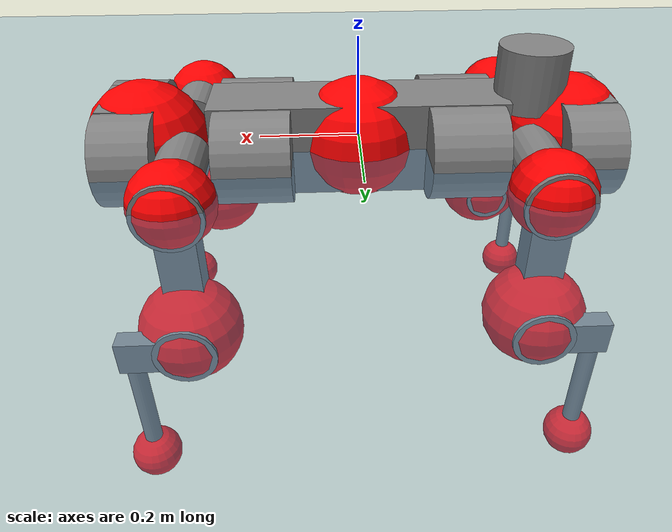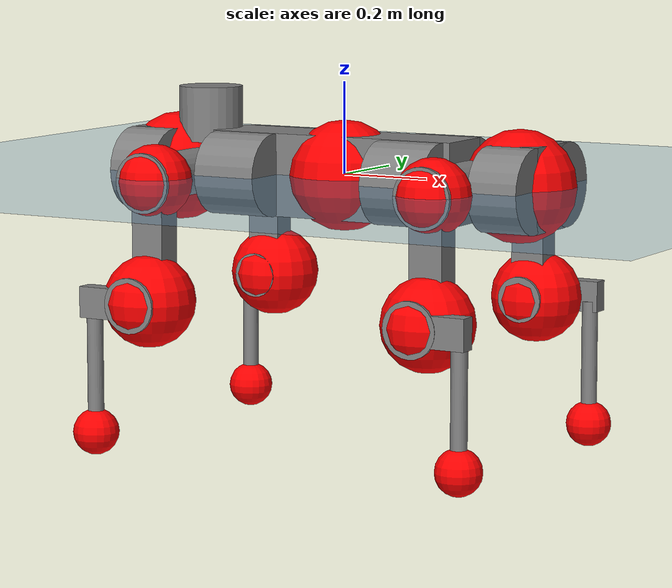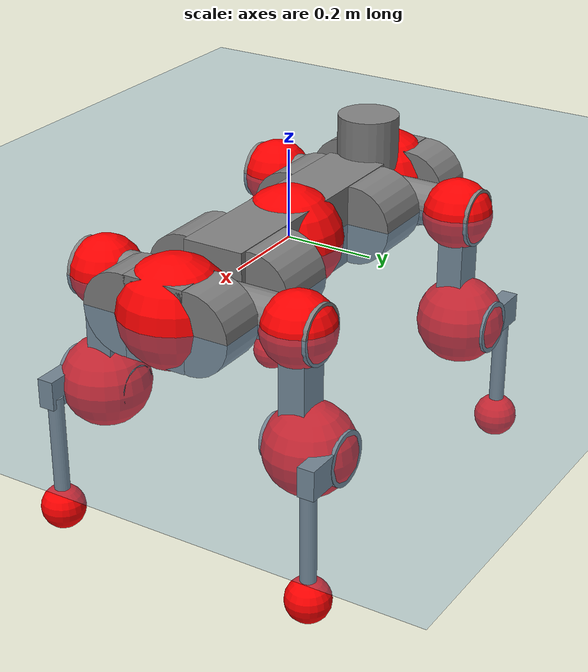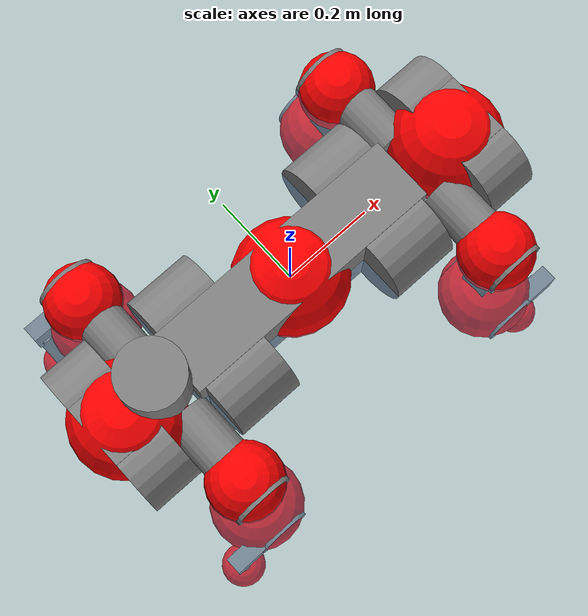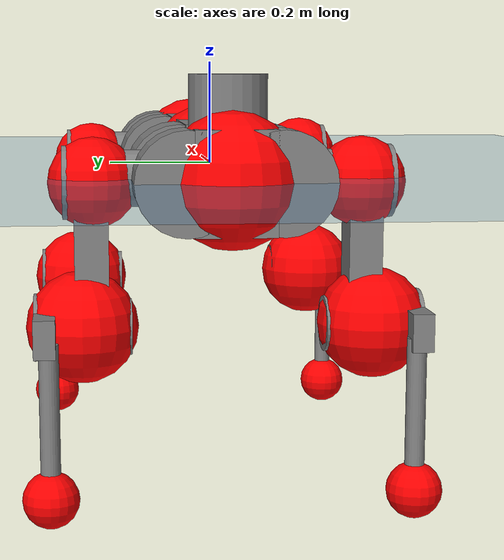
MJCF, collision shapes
<mujoco model="anymal_c">
  <compiler angle="radian" assetdir="assets" balanceinertia="true" inertiafromgeom="false"/>

  <option timestep="0.005" density="1.2" viscosity="2e-05"/>

  <size nkey="1"/>

  <visual>
    <quality shadowsize="8192"/>
    <map shadowclip="0.5"/>
  </visual>

  <default>
    <default class="/">
      <material specular="0" shininess="0.25"/>
      <geom contype="0" conaffinity="0" group="1" solref="-1000 -80"/>
      <site size="0.01 0.005 0.005" group="5"/>
      <general forcelimited="true" forcerange="-80 80" biastype="affine" gainprm="80" biasprm="0 -80 -2"/>
      <default class="anymal_c">
        <joint armature="0.01" damping="0.01" frictionloss="0.1"/>
        <default class="visual">
          <geom type="mesh" group="2"/>
          <default class="visual_zflip"/>
        </default>
        <default class="collision">
          <geom type="cylinder" group="3"/>
          <default class="foot">
            <geom size="0.03 0 0" type="sphere" condim="6" priority="1" friction="0.8 0.02 0.01" solimp="0.015 1 0.03"/>
          </default>
        </default>
      </default>
      <default class="reward_collision_sphere">
        <geom group="5" rgba="1 0 0 1"/>
      </default>
    </default>
  </default>

  <asset>
    <texture type="skybox" colorspace="auto" name="//unnamed_texture_0" builtin="gradient" rgb1="0.95 0.95 0.95" rgb2="0.95 0.95 0.95" width="100" height="600"/>
    <texture type="2d" colorspace="auto" name="texplane" builtin="checker" rgb1="0.345 0.575 0.748" rgb2="0.345 0.575 0.748" markrgb="1 1 1" width="512" height="512"/>
    <texture type="2d" colorspace="linear" name="base" file="base.png"/>
    <texture type="2d" colorspace="linear" name="top_shell" file="top_shell.png"/>
    <texture type="2d" colorspace="linear" name="bottom_shell" file="bottom_shell.png"/>
    <texture type="2d" colorspace="linear" name="remote" file="remote.png"/>
    <texture type="2d" colorspace="linear" name="hatch" file="hatch.png"/>
    <texture type="2d" colorspace="linear" name="handle" file="handle.png"/>
    <texture type="2d" colorspace="linear" name="face" file="face.png"/>
    <texture type="2d" colorspace="linear" name="battery" file="battery.png"/>
    <texture type="2d" colorspace="linear" name="lidar_cage" file="lidar_cage.png"/>
    <texture type="2d" colorspace="linear" name="depth_camera" file="depth_camera.png"/>
    <texture type="2d" colorspace="linear" name="wide_angle_camera" file="wide_angle_camera.png"/>
    <texture type="2d" colorspace="linear" name="lidar" file="lidar.png"/>
    <texture type="2d" colorspace="linear" name="drive" file="drive.png"/>
    <texture type="2d" colorspace="linear" name="hip_l" file="hip_l.png"/>
    <texture type="2d" colorspace="linear" name="shank_l" file="shank_l.png"/>
    <texture type="2d" colorspace="linear" name="foot" file="foot.png"/>
    <texture type="2d" colorspace="linear" name="thigh" file="thigh.png"/>
    <texture type="2d" colorspace="linear" name="shank_r" file="shank_r.png"/>
    <texture type="2d" colorspace="linear" name="hip_r" file="hip_r.png"/>
    <material name="MatPlane" class="/" texture="texplane" texuniform="true" texrepeat="2 2" specular="0.9" shininess="0.5"/>
    <material name="black_plastic" class="/" rgba="0.007 0.007 0.007 1"/>
    <material name="green" class="/" rgba="0.052 0.178 0.033 1"/>
    <material name="red" class="/" rgba="0.178 0.006 0.005 1"/>
    <material name="yellow" class="/" rgba="0.178 0.119 0.006 1"/>
    <material name="lwl" class="/" rgba="0.8 0.8 0.8 1"/>
    <material name="base" class="/" texture="base"/>
    <material name="top_shell" class="/" texture="top_shell"/>
    <material name="bottom_shell" class="/" texture="bottom_shell"/>
    <material name="hip_l" class="/" texture="hip_l"/>
    <material name="thigh" class="/" texture="thigh"/>
    <material name="shank_l" class="/" texture="shank_l"/>
    <material name="foot" class="/" texture="foot"/>
    <material name="hip_r" class="/" texture="hip_r"/>
    <material name="shank" class="/" texture="shank_r"/>
    <material name="hatch" class="/" texture="hatch"/>
    <material name="remote" class="/" texture="remote"/>
    <material name="handle" class="/" texture="handle"/>
    <material name="face" class="/" texture="face"/>
    <material name="depth_camera" class="/" texture="depth_camera"/>
    <material name="wide_angle_camera" class="/" texture="wide_angle_camera"/>
    <material name="battery" class="/" texture="battery"/>
    <material name="lidar_cage" class="/" texture="lidar_cage"/>
    <material name="lidar" class="/" texture="lidar"/>
    <material name="drive" class="/" texture="drive"/>
    <mesh name="base_0" class="/" file="base_0.obj"/>
    <mesh name="base_1" class="/" file="base_1.obj"/>
    <mesh name="base_2" class="/" file="base_2.obj"/>
    <mesh name="base_3" class="/" file="base_3.obj"/>
    <mesh name="base_4" class="/" file="base_4.obj"/>
    <mesh name="base_5" class="/" file="base_5.obj"/>
    <mesh name="top_shell" class="/" file="top_shell.obj"/>
    <mesh name="bottom_shell" class="/" file="bottom_shell.obj"/>
    <mesh name="remote" class="/" file="remote.obj"/>
    <mesh name="handle" class="/" file="handle.obj"/>
    <mesh name="face" class="/" file="face.obj"/>
    <mesh name="wide_angle_camera" class="/" file="wide_angle_camera.obj"/>
    <mesh name="depth_camera" class="/" file="depth_camera.obj"/>
    <mesh name="battery" class="/" file="battery.obj"/>
    <mesh name="lidar_cage" class="/" file="lidar_cage.obj"/>
    <mesh name="lidar" class="/" file="lidar.obj"/>
    <mesh name="drive" class="/" file="drive.obj"/>
    <mesh name="hip_l" class="/" file="hip_l.obj"/>
    <mesh name="thigh" class="/" file="thigh.obj"/>
    <mesh name="shank_l" class="/" file="shank_l.obj"/>
    <mesh name="foot" class="/" file="foot.obj"/>
    <mesh name="hip_r" class="/" file="hip_r.obj"/>
    <mesh name="hatch" class="/" file="hatch.obj"/>
    <mesh name="shank_r" class="/" file="shank_r.obj"/>
  </asset>

  <worldbody>
    <geom name="floor" class="/" size="100 100 0.125" type="plane" group="0" material="MatPlane"/>
    <light name="toplight_shadow" class="/" pos="0 0 5" dir="0.0990148 0.0990148 -0.990148" type="directional" ambient="0.04 0.04 0.04" diffuse="0.55 0.55 0.55" specular="0.12 0.12 0.12"/>
    <light name="toplight_fill" class="/" pos="0 0 5" dir="0.0990148 0.0990148 -0.990148" type="directional" castshadow="false" ambient="0.04 0.04 0.04" diffuse="0.3 0.3 0.3" specular="0.08 0.08 0.08"/>
    <body name="trunk" childclass="anymal_c" pos="0.000676938 -0.000323066 -0.00254825" quat="1 8.65445e-05 8.79182e-05 -6.43633e-05">
      <inertial pos="0.00096488 0.00381068 0.043586" quat="0.504472 0.498674 0.500425 0.496395" mass="20.2959" diaginertia="0.510181 1.41718 0.138147"/>
      <joint name="//unnamed_joint_0" type="free" armature="0" damping="0" frictionloss="0"/>
      <geom name="//unnamed_geom_1" class="visual" material="green" mesh="base_0"/>
      <geom name="//unnamed_geom_2" class="visual" material="yellow" mesh="base_1"/>
      <geom name="//unnamed_geom_3" class="visual" material="red" mesh="base_2"/>
      <geom name="//unnamed_geom_4" class="visual" material="black_plastic" mesh="base_3"/>
      <geom name="//unnamed_geom_5" class="visual" material="lwl" mesh="base_4"/>
      <geom name="//unnamed_geom_6" class="visual" material="base" mesh="base_5"/>
      <geom name="trunk_1" class="collision" size="0.291611 0.0703889 0.0905" type="box"/>
      <geom name="trunk_2" class="collision" size="0.0905 0.0729028" pos="0.204041 0.0819615 0" quat="0.707107 0 0.707107 0"/>
      <geom name="trunk_3" class="collision" size="0.0905 0.0729028" pos="-0.204041 0.0819615 0" quat="0.707107 0 0.707107 0"/>
      <geom name="trunk_4" class="collision" size="0.0905 0.0729028" pos="0.204041 -0.0819615 0" quat="0.707107 0 0.707107 0"/>
      <geom name="trunk_5" class="collision" size="0.0905 0.0729028" pos="-0.204041 -0.0819615 0" quat="0.707107 0 0.707107 0"/>
      <geom name="//unnamed_geom_12" class="visual" material="top_shell" mesh="top_shell"/>
      <geom name="//unnamed_geom_13" class="visual" material="bottom_shell" mesh="bottom_shell"/>
      <geom name="//unnamed_geom_14" class="visual" material="remote" mesh="remote"/>
      <geom name="//unnamed_geom_15" class="visual" material="handle" mesh="handle"/>
      <geom name="//unnamed_geom_16" class="visual" pos="0.388851 0 0" quat="1 0 0 0" material="face" mesh="face"/>
      <geom name="trunk_6" class="collision" size="0.0553056 0.0703889 0.0905" pos="0.440448 0 0" type="box"/>
      <geom name="//unnamed_geom_18" class="collision" size="0.0905 0.0553056" pos="0.440448 0.0819615 0" quat="0.707107 0 0.707107 0"/>
      <geom name="//unnamed_geom_19" class="collision" size="0.0905 0.0553056" pos="0.440448 -0.0819615 0" quat="0.707107 0 0.707107 0"/>
      <geom name="//unnamed_geom_20" class="visual" pos="0.433083 0 -0.0262724" quat="0.965926 0 0.258819 0" material="depth_camera" mesh="depth_camera"/>
      <geom name="//unnamed_geom_21" class="visual" pos="0.481256 0 0.0135878" material="wide_angle_camera" mesh="wide_angle_camera"/>
      <geom name="//unnamed_geom_22" class="visual_zflip" pos="-0.388851 0 0" quat="0 0 0 1" material="face" mesh="face"/>
      <geom name="trunk_7" class="collision" size="0.0553056 0.0703889 0.0905" pos="-0.440448 0 0" quat="0 0 0 1" type="box"/>
      <geom name="//unnamed_geom_24" class="collision" size="0.0905 0.0553056" pos="-0.440448 -0.0819615 0" quat="0 -0.707107 0 0.707107"/>
      <geom name="//unnamed_geom_25" class="collision" size="0.0905 0.0553056" pos="-0.440448 0.0819615 0" quat="0 -0.707107 0 0.707107"/>
      <geom name="//unnamed_geom_26" class="visual" pos="-0.433083 0 -0.0262724" quat="0 -0.258819 0 0.965926" material="depth_camera" mesh="depth_camera"/>
      <geom name="//unnamed_geom_27" class="visual_zflip" pos="-0.481256 0 0.0135878" quat="0 0 0 1" material="wide_angle_camera" mesh="wide_angle_camera"/>
      <geom name="//unnamed_geom_28" class="visual" material="battery" mesh="battery"/>
      <geom name="//unnamed_geom_29" class="visual" pos="0 0.0925784 0.0265992" quat="0.683013 -0.183013 0.183013 0.683013" material="depth_camera" mesh="depth_camera"/>
      <geom name="//unnamed_geom_30" class="visual" pos="0 -0.0925784 0.0265992" quat="0.683013 0.183013 0.183013 -0.683013" material="depth_camera" mesh="depth_camera"/>
      <geom name="//unnamed_geom_31" class="visual" pos="-0.341476 0 0.0667135" quat="1 0 0 0" material="lidar_cage" mesh="lidar_cage"/>
      <geom name="trunk_8" class="collision" size="0.0703889 0.0603333" pos="-0.341476 0 0.121173"/>
      <geom name="//unnamed_geom_33" class="visual" pos="-0.341476 9.14441e-05 0.12907" quat="0.707107 0 0 -0.707107" material="lidar" mesh="lidar"/>
      <geom name="//unnamed_geom_34" class="visual" pos="0.281343 0.121678 4.54044e-09" quat="0.258819 0.965926 0 0" material="drive" mesh="drive"/>
      <geom name="//unnamed_geom_35" class="visual" pos="0.281343 -0.121678 -4.54044e-09" quat="0.258819 -0.965926 0 0" material="drive" mesh="drive"/>
      <geom name="//unnamed_geom_36" class="visual" pos="-0.281343 0.121678 -4.54044e-09" quat="0 0 0.965926 -0.258819" material="drive" mesh="drive"/>
      <geom name="//unnamed_geom_37" class="visual" pos="-0.281343 -0.121678 4.54044e-09" quat="0 0 -0.965926 -0.258819" material="drive" mesh="drive"/>
      <geom name="//unnamed_geom_38" class="visual" pos="0.108822 0 0.0662597" quat="1 0 0 0" material="hatch" mesh="hatch"/>
      <geom name="//unnamed_geom_39" class="reward_collision_sphere" size="0.120667"/>
      <geom name="//unnamed_geom_40" class="reward_collision_sphere" size="0.120667" pos="0.422155 0 0"/>
      <geom name="//unnamed_geom_41" class="reward_collision_sphere" size="0.120667" pos="-0.422155 0 0"/>
      <site name="imu" pos="0.226398 0.0125093 0.0446343" size="0.0100556"/>
      <camera name="track" pos="0 -2.34176 0" quat="0.707107 0.707107 0 0" mode="trackcom"/>
      <camera name="ego_camera" pos="0.422155 0 -0.0363067" quat="-0.5 -0.5 0.5 0.5"/>
      <body name="LF_HIP" pos="0.283473 0.121237 -0.000432524" quat="0.258671 0.965965 -0.000116842 0.000317743">
        <inertial pos="0.0529823 -0.0164837 -0.00811004" quat="-0.111557 0.722608 -0.125251 0.670601" mass="2.90071" diaginertia="0.00434573 0.0108911 0.00208139"/>
        <joint name="LF_HAA" pos="0 0 0" axis="0.999896 0.013247 -0.00573864" range="-0.749019 0.439602" armature="0.0100317" damping="0.010979" frictionloss="0.104825"/>
        <geom name="//unnamed_geom_42" class="visual" pos="0 0.000267094 -4.38699e-05" quat="0.258819 -0.965926 0 0" material="hip_l" mesh="hip_l"/>
        <geom name="//unnamed_geom_43" class="visual" pos="0.0561935 -0.0710615 -0.0390805" quat="0.183013 -0.683013 0.683013 0.183013" material="drive" mesh="drive"/>
        <geom name="//unnamed_geom_44" class="collision" size="0.0502778 0.0703889" pos="0.0561935 -0.0140035 -0.00626744" quat="-0.353553 -0.612372 0.612372 -0.353553"/>
        <body name="LF_THIGH" pos="0.0550437 -0.0837221 -0.0345842" quat="0.184595 -0.681926 0.683505 0.183634">
          <inertial pos="0.0298958 -0.00415787 -0.225205" quat="0.993068 -0.0162393 -0.0815214 0.0831021" mass="3.14452" diaginertia="0.0223248 0.0620984 0.00253997"/>
          <joint name="LF_HFE" pos="0 0 0" axis="1 0.000609952 -0.000479816" stiffness="0.00873711" range="-3.14485 3.19753" armature="0.00816854" damping="0.021286" frictionloss="0.0943111"/>
          <geom name="//unnamed_geom_45" class="visual" pos="-0.00463096 -7.2973e-06 0" quat="0.707107 0 0 -0.707107" material="thigh" mesh="thigh"/>
          <geom name="//unnamed_geom_46" class="collision" size="0.0653611 0.0402222" pos="0.0375249 0 0" quat="0.5 0.5 -0.5 -0.5"/>
          <geom name="//unnamed_geom_47" class="collision" size="0.0377083 0.0301667 0.142099" pos="0.0281437 0 -0.128266" quat="0.707107 0 0 -0.707107" type="box"/>
          <geom name="//unnamed_geom_48" class="visual" pos="0.0940936 0 -0.258685" quat="1 0 0 0" material="drive" mesh="drive"/>
          <geom name="//unnamed_geom_49" class="collision" size="0.0502778 0.0703889" pos="0.0284251 0 -0.258685" quat="0.707107 0 0.707107 0"/>
          <geom name="//unnamed_geom_50" class="reward_collision_sphere" size="0.0804445" pos="0.023453 0 0"/>
          <body name="LF_SHANK" pos="0.0958336 0.00106293 -0.262438" quat="1 -0.000260804 0.000494394 -0.000469566">
            <inertial pos="0.00733996 -0.0723718 -0.072127" quat="0.993208 -0.115276 -0.00615761 -0.0145428" mass="0.611589" diaginertia="0.0073481 0.0194429 0.000671905"/>
            <joint name="LF_KFE" pos="0 0 0" axis="0.999997 0.000429624 0.0022296" range="-3.22487 3.12094" armature="0.00935164" damping="0.0153919" frictionloss="0.113126"/>
            <geom name="//unnamed_geom_51" class="visual" pos="-0.00151005 -0.00805168 0" quat="0.707107 0 0 -0.707107" material="shank_l" mesh="shank_l"/>
            <geom name="LF_kfe_act" class="collision" size="0.0603333 0.0201111" pos="0.0187624 0 0" quat="0.5 0.5 -0.5 -0.5"/>
            <geom name="//unnamed_geom_53" class="collision" size="0.0578185 0.0339375 0.0191056" pos="0.0187624 -0.0673244 0" quat="0.5 0.5 -0.5 -0.5" type="box"/>
            <geom name="//unnamed_geom_54" class="visual" pos="0.0122429 -0.105574 -0.306764" quat="0.382683 0 0 -0.92388" material="foot" mesh="foot"/>
            <geom name="LF_calf" class="collision" size="0.0175972 0.142037" pos="0.0122425 -0.102979 -0.153382" quat="0.707107 0 0 -0.707107"/>
            <geom name="LF_foot" class="foot" size="0.0303319" pos="0.0122425 -0.102979 -0.286342" quat="0.707107 0 0 -0.707107"/>
            <geom name="//unnamed_geom_57" class="reward_collision_sphere" size="0.100556" pos="-0.0469061 0 0"/>
            <geom name="//unnamed_geom_58" class="reward_collision_sphere" size="0.0502778" pos="0.0122425 -0.102979 -0.286342"/>
            <site name="LF_foot" class="foot" pos="0.0122425 -0.102979 -0.286342" quat="0.707107 0 0 -0.707107" size="0.0100556"/>
          </body>
        </body>
      </body>
      <body name="RF_HIP" pos="0.28546 -0.123425 0.00768806" quat="0.259927 -0.965628 0.000406913 0.000317669">
        <inertial pos="0.0514147 0.020603 -0.0094373" quat="0.126741 0.685121 0.132336 0.705006" mass="2.72455" diaginertia="0.00422882 0.010812 0.00207367"/>
        <joint name="RF_HAA" pos="0 0 0" axis="0.999975 0.00641349 0.00302233" stiffness="0.022365" range="-0.471312 0.685103" armature="0.00908935" damping="0.0162664" frictionloss="0.113569"/>
        <geom name="//unnamed_geom_59" class="visual" pos="0 -0.000267092 -4.38698e-05" quat="0.258819 0.965926 0 0" material="hip_r" mesh="hip_r"/>
        <geom name="//unnamed_geom_60" class="visual" pos="0.0561935 0.0710615 -0.0390805" quat="0.183013 0.683013 0.683013 -0.183013" material="drive" mesh="drive"/>
        <geom name="//unnamed_geom_61" class="collision" size="0.0502778 0.0703889" pos="0.0561935 0.0140035 -0.00626744" quat="-0.353553 0.612372 0.612372 0.353553"/>
        <body name="RF_THIGH" pos="0.0541798 0.0796619 -0.0351571" quat="0.182996 0.68296 0.683115 -0.182845">
          <inertial pos="0.0305833 -0.000574144 -0.225836" quat="0.993404 -0.0152038 -0.0748083 0.0855667" mass="3.22961" diaginertia="0.0219404 0.0658806 0.00258203"/>
          <joint name="RF_HFE" pos="0 0 0" axis="0.999961 0.00258088 -0.008443" range="-3.13651 3.18814" armature="0.0111315" damping="0" frictionloss="0.0967866"/>
          <geom name="//unnamed_geom_62" class="visual" pos="-0.00463096 -7.2973e-06 0" quat="0.707107 0 0 -0.707107" material="thigh" mesh="thigh"/>
          <geom name="//unnamed_geom_63" class="collision" size="0.0653611 0.0402222" pos="0.0375249 0 0" quat="0.5 0.5 0.5 0.5"/>
          <geom name="//unnamed_geom_64" class="collision" size="0.0377083 0.0301667 0.142099" pos="0.0281437 0 -0.128266" quat="0.707107 0 0 0.707107" type="box"/>
          <geom name="//unnamed_geom_65" class="visual" pos="0.0940936 0 -0.258685" quat="1 0 0 0" material="drive" mesh="drive"/>
          <geom name="//unnamed_geom_66" class="collision" size="0.0502778 0.0703889" pos="0.0284251 0 -0.258685" quat="0.707107 0 0.707107 0"/>
          <geom name="//unnamed_geom_67" class="reward_collision_sphere" size="0.0804445" pos="0.023453 0 0"/>
          <body name="RF_SHANK" pos="0.0900195 -0.000388262 -0.26172" quat="0.999999 -0.00073137 0.000689723 -0.000695195">
            <inertial pos="0.00444197 0.0721422 -0.0726465" quat="0.99173 0.12607 -0.00356486 0.0237873" mass="0.566599" diaginertia="0.00680727 0.0192815 0.000647108"/>
            <joint name="RF_KFE" pos="0 0 0" axis="0.999992 -0.00392534 -0.00051704" range="-3.08418 3.18839" armature="0.00909958" damping="0.0233792" frictionloss="0.0885845"/>
            <geom name="//unnamed_geom_68" class="visual" pos="-0.00151005 0.00805167 0" quat="0.707107 0 0 0.707107" material="shank" mesh="shank_r"/>
            <geom name="RF_kfe_act" class="collision" size="0.0603333 0.0201111" pos="0.0187624 0 0" quat="0.5 0.5 0.5 0.5"/>
            <geom name="//unnamed_geom_70" class="collision" size="0.0578185 0.0339375 0.0191056" pos="0.0187624 0.0673244 0" quat="0.5 0.5 0.5 0.5" type="box"/>
            <geom name="//unnamed_geom_71" class="visual" pos="0.0122421 0.105574 -0.306764" quat="0.382683 0 0 0.92388" material="foot" mesh="foot"/>
            <geom name="RF_calf" class="collision" size="0.0175972 0.142037" pos="0.0122425 0.102979 -0.153382" quat="0.707107 0 0 0.707107"/>
            <geom name="RF_foot" class="foot" size="0.0350577" pos="0.0122425 0.102979 -0.286342" quat="0.707107 0 0 0.707107"/>
            <geom name="//unnamed_geom_74" class="reward_collision_sphere" size="0.100556" pos="-0.0469061 0 0"/>
            <geom name="//unnamed_geom_75" class="reward_collision_sphere" size="0.0502778" pos="0.0122425 0.102979 -0.286342"/>
            <site name="RF_foot" class="foot" pos="0.0122425 0.102979 -0.286342" quat="0.707107 0 0 0.707107" size="0.0100556"/>
          </body>
        </body>
      </body>
      <body name="LH_HIP" pos="-0.28083 0.123763 0.000424629" quat="0.000280916 0.000604871 0.965976 -0.258629">
        <inertial pos="0.0556944 0.0150274 -0.00677525" quat="0.132424 0.671847 0.136176 0.71592" mass="2.89721" diaginertia="0.00401163 0.0102986 0.00199813"/>
        <joint name="LH_HAA" pos="0 0 0" axis="0.999954 0.00329498 0.00902544" range="-0.523306 0.673964" armature="0.00878704" damping="0.00720832" frictionloss="0.0970803"/>
        <geom name="//unnamed_geom_76" class="visual" pos="0 -0.000267092 -4.38698e-05" quat="-0.258819 -0.965926 0 0" material="hip_r" mesh="hip_r"/>
        <geom name="//unnamed_geom_77" class="visual" pos="0.0561935 0.0710615 -0.0390805" quat="0.183013 0.683013 0.683013 -0.183013" material="drive" mesh="drive"/>
        <geom name="//unnamed_geom_78" class="collision" size="0.0502778 0.0703889" pos="0.0561935 0.0140035 -0.00626744" quat="-0.353553 0.612372 0.612372 0.353553"/>
        <body name="LH_THIGH" pos="0.0555511 0.0827258 -0.03813" quat="0.181866 0.683422 0.683135 -0.18217">
          <inertial pos="0.029045 -0.00482759 -0.220379" quat="0.992601 -0.00549711 -0.0837172 0.0877734" mass="3.25329" diaginertia="0.0215277 0.0664663 0.00249699"/>
          <joint name="LH_HFE" pos="0 0 0" axis="0.999753 0.0221985 0.001321" range="-3.18075 3.13543" armature="0.0102953" damping="0.00404589" frictionloss="0.0944243"/>
          <geom name="//unnamed_geom_79" class="visual" pos="-0.00463096 -7.2973e-06 0" quat="0.707107 0 0 -0.707107" material="thigh" mesh="thigh"/>
          <geom name="//unnamed_geom_80" class="collision" size="0.0653611 0.0402222" pos="0.0375249 0 0" quat="0.5 0.5 -0.5 -0.5"/>
          <geom name="//unnamed_geom_81" class="collision" size="0.0377083 0.0301667 0.142099" pos="0.0281437 0 -0.128266" quat="0.707107 0 0 -0.707107" type="box"/>
          <geom name="//unnamed_geom_82" class="visual" pos="0.0940936 0 -0.258685" quat="1 0 0 0" material="drive" mesh="drive"/>
          <geom name="//unnamed_geom_83" class="collision" size="0.0502778 0.0703889" pos="0.0284251 0 -0.258685" quat="0.707107 0 0.707107 0"/>
          <geom name="//unnamed_geom_84" class="reward_collision_sphere" size="0.0804445" pos="0.023453 0 0"/>
          <body name="LH_SHANK" pos="0.0925468 -0.00321798 -0.258059" quat="1 0.000399505 0.000484462 -0.000336688">
            <inertial pos="0.0043681 0.0703147 -0.0744737" quat="0.99279 0.117713 0.000517489 0.022636" mass="0.594739" diaginertia="0.00759704 0.0209634 0.000715234"/>
            <joint name="LH_KFE" pos="0 0 0" axis="0.999991 0.00200616 -0.00377873" range="-3.21711 3.12386" armature="0.00792054" damping="0.00627976" frictionloss="0.097735"/>
            <geom name="//unnamed_geom_85" class="visual" pos="-0.00151005 0.00805167 0" quat="-0.707107 0 0 -0.707107" material="shank" mesh="shank_r"/>
            <geom name="LH_kfe_act" class="collision" size="0.0603333 0.0201111" pos="0.0187624 0 0" quat="0.5 0.5 -0.5 -0.5"/>
            <geom name="//unnamed_geom_87" class="collision" size="0.0578185 0.0339375 0.0191056" pos="0.0187624 0.0673244 0" quat="0.5 0.5 -0.5 -0.5" type="box"/>
            <geom name="//unnamed_geom_88" class="visual" pos="0.0122421 0.105574 -0.306764" quat="-0.382683 0 0 -0.92388" material="foot" mesh="foot"/>
            <geom name="LH_calf" class="collision" size="0.0175972 0.142037" pos="0.0122425 0.102979 -0.153382" quat="0.707107 0 0 -0.707107"/>
            <geom name="LH_foot" class="foot" size="0.033546" pos="0.0122425 0.102979 -0.286342" quat="0.707107 0 0 -0.707107"/>
            <geom name="//unnamed_geom_91" class="reward_collision_sphere" size="0.100556" pos="-0.0469061 0 0"/>
            <geom name="//unnamed_geom_92" class="reward_collision_sphere" size="0.0502778" pos="0.0122425 0.102979 -0.286342"/>
            <site name="LH_foot" class="foot" pos="0.0122425 0.102979 -0.286342" quat="0.707107 0 0 -0.707107" size="0.0100556"/>
          </body>
        </body>
      </body>
      <body name="RH_HIP" pos="-0.27743 -0.122463 0.000359997" quat="0.0016838 0.00132515 -0.965697 -0.259664">
        <inertial pos="0.0536778 -0.0205243 -0.00992008" quat="-0.127978 0.709988 -0.131191 0.679946" mass="2.76108" diaginertia="0.00418339 0.0109397 0.00186581"/>
        <joint name="RH_HAA" pos="0 0 0" axis="0.999972 -0.0073481 0.00146286" range="-0.774392 0.494787" armature="0.00863446" damping="0.00434316" frictionloss="0.104658"/>
        <geom name="//unnamed_geom_93" class="visual" pos="0 0.000267094 -4.38699e-05" quat="-0.258819 0.965926 0 0" material="hip_l" mesh="hip_l"/>
        <geom name="//unnamed_geom_94" class="visual" pos="0.0561935 -0.0710615 -0.0390805" quat="-0.183013 0.683013 -0.683013 -0.183013" material="drive" mesh="drive"/>
        <geom name="//unnamed_geom_95" class="collision" size="0.0502778 0.0703889" pos="0.0561935 -0.0140035 -0.00626744" quat="0.353553 0.612372 -0.612372 0.353553"/>
        <body name="RH_THIGH" pos="0.0559369 -0.0859806 -0.0397711" quat="-0.18307 0.682205 -0.683783 -0.183094">
          <inertial pos="0.0282015 0.000513456 -0.223581" quat="0.992969 -0.0153292 -0.079713 0.0861609" mass="3.32445" diaginertia="0.0222426 0.0657038 0.00264529"/>
          <joint name="RH_HFE" pos="0 0 0" axis="0.999984 0.00160559 0.00551157" range="-3.12661 3.05277" armature="0.0120108" damping="0.00189758" frictionloss="0.0962794"/>
          <geom name="//unnamed_geom_96" class="visual" pos="-0.00463096 -7.2973e-06 0" quat="0.707107 0 0 -0.707107" material="thigh" mesh="thigh"/>
          <geom name="//unnamed_geom_97" class="collision" size="0.0653611 0.0402222" pos="0.0375249 0 0" quat="0.5 0.5 0.5 0.5"/>
          <geom name="//unnamed_geom_98" class="collision" size="0.0377083 0.0301667 0.142099" pos="0.0281437 0 -0.128266" quat="0.707107 0 0 0.707107" type="box"/>
          <geom name="//unnamed_geom_99" class="visual" pos="0.0940936 0 -0.258685" quat="1 0 0 0" material="drive" mesh="drive"/>
          <geom name="//unnamed_geom_100" class="collision" size="0.0502778 0.0703889" pos="0.0284251 0 -0.258685" quat="0.707107 0 0.707107 0"/>
          <geom name="//unnamed_geom_101" class="reward_collision_sphere" size="0.0804445" pos="0.023453 0 0"/>
          <body name="RH_SHANK" pos="0.0952638 -0.000187336 -0.257405" quat="1 0.000326921 -0.000275406 0.000176985">
            <inertial pos="0.00401478 -0.0691522 -0.0723188" quat="0.992905 -0.116207 -0.00128167 -0.0251821" mass="0.600414" diaginertia="0.00761874 0.0207563 0.000677725"/>
            <joint name="RH_KFE" pos="0 0 0" axis="0.999995 0.00146632 -0.00296787" stiffness="0.0095498" range="-3.18251 3.17096" armature="0.00944484" damping="0" frictionloss="0.107097"/>
            <geom name="//unnamed_geom_102" class="visual" pos="-0.00151005 -0.00805168 0" quat="0.707107 0 0 -0.707107" material="shank_l" mesh="shank_l"/>
            <geom name="RH_kfe_act" class="collision" size="0.0603333 0.0201111" pos="0.0187624 0 0" quat="0.5 0.5 0.5 0.5"/>
            <geom name="//unnamed_geom_104" class="collision" size="0.0578185 0.0339375 0.0191056" pos="0.0187624 -0.0673244 0" quat="0.5 0.5 0.5 0.5" type="box"/>
            <geom name="//unnamed_geom_105" class="visual" pos="0.0122429 -0.105574 -0.306764" quat="0.382683 0 0 -0.92388" material="foot" mesh="foot"/>
            <geom name="RH_calf" class="collision" size="0.0175972 0.142037" pos="0.0122425 -0.102979 -0.153382" quat="0.707107 0 0 0.707107"/>
            <geom name="RH_foot" class="foot" size="0.0247824" pos="0.0122425 -0.102979 -0.286342" quat="0.707107 0 0 0.707107"/>
            <geom name="//unnamed_geom_108" class="reward_collision_sphere" size="0.100556" pos="-0.0469061 0 0"/>
            <geom name="//unnamed_geom_109" class="reward_collision_sphere" size="0.0502778" pos="0.0122425 -0.102979 -0.286342"/>
            <site name="RH_foot" class="foot" pos="0.0122425 -0.102979 -0.286342" quat="0.707107 0 0 0.707107" size="0.0100556"/>
          </body>
        </body>
      </body>
    </body>
  </worldbody>

  <contact>
    <pair class="/" geom1="floor" geom2="LF_foot" name="//unnamed_contact_0"/>
    <pair class="/" geom1="floor" geom2="RF_foot" name="//unnamed_contact_1"/>
    <pair class="/" geom1="floor" geom2="LH_foot" name="//unnamed_contact_2"/>
    <pair class="/" geom1="floor" geom2="RH_foot" name="//unnamed_contact_3"/>
  </contact>

  <actuator>
    <general name="LF_HAA" class="/" joint="LF_HAA" forcerange="-86.5007 86.5007" gainprm="81.8788" biasprm="0 -81.8788 -2.2963"/>
    <general name="LF_HFE" class="/" joint="LF_HFE" forcerange="-81.1001 81.1001" gainprm="81.8788" biasprm="0 -81.8788 -2.2963"/>
    <general name="LF_KFE" class="/" joint="LF_KFE" forcerange="-83.8505 83.8505" gainprm="81.8788" biasprm="0 -81.8788 -2.2963"/>
    <general name="RF_HAA" class="/" joint="RF_HAA" forcerange="-75.6632 75.6632" gainprm="81.8788" biasprm="0 -81.8788 -2.2963"/>
    <general name="RF_HFE" class="/" joint="RF_HFE" forcerange="-84.1024 84.1024" gainprm="81.8788" biasprm="0 -81.8788 -2.2963"/>
    <general name="RF_KFE" class="/" joint="RF_KFE" forcerange="-81.5579 81.5579" gainprm="81.8788" biasprm="0 -81.8788 -2.2963"/>
    <general name="LH_HAA" class="/" joint="LH_HAA" forcerange="-73.7875 73.7875" gainprm="81.8788" biasprm="0 -81.8788 -2.2963"/>
    <general name="LH_HFE" class="/" joint="LH_HFE" forcerange="-82.1806 82.1806" gainprm="81.8788" biasprm="0 -81.8788 -2.2963"/>
    <general name="LH_KFE" class="/" joint="LH_KFE" forcerange="-89.6988 89.6988" gainprm="81.8788" biasprm="0 -81.8788 -2.2963"/>
    <general name="RH_HAA" class="/" joint="RH_HAA" forcerange="-75.4218 75.4218" gainprm="81.8788" biasprm="0 -81.8788 -2.2963"/>
    <general name="RH_HFE" class="/" joint="RH_HFE" forcerange="-88.1697 88.1697" gainprm="81.8788" biasprm="0 -81.8788 -2.2963"/>
    <general name="RH_KFE" class="/" joint="RH_KFE" forcerange="-73.3537 73.3537" gainprm="81.8788" biasprm="0 -81.8788 -2.2963"/>
  </actuator>

  <sensor>
    <gyro site="imu" name="imu_angular_velocity"/>
    <velocimeter site="imu" name="imu_linear_velocity"/>
    <framelinvel objtype="site" objname="LF_foot" name="LF_foot_global_linear_velocity"/>
    <framelinvel objtype="site" objname="RF_foot" name="RF_foot_global_linear_velocity"/>
    <framelinvel objtype="site" objname="LH_foot" name="LH_foot_global_linear_velocity"/>
    <framelinvel objtype="site" objname="RH_foot" name="RH_foot_global_linear_velocity"/>
  </sensor>

  <keyframe>
    <key name="home" qpos="0 0 0.55 1 0 0 0 0 0.4 -0.8 0 -0.4 0.8 0 -0.4 0.8 0 0.4 -0.8"/>
  </keyframe>
</mujoco>
